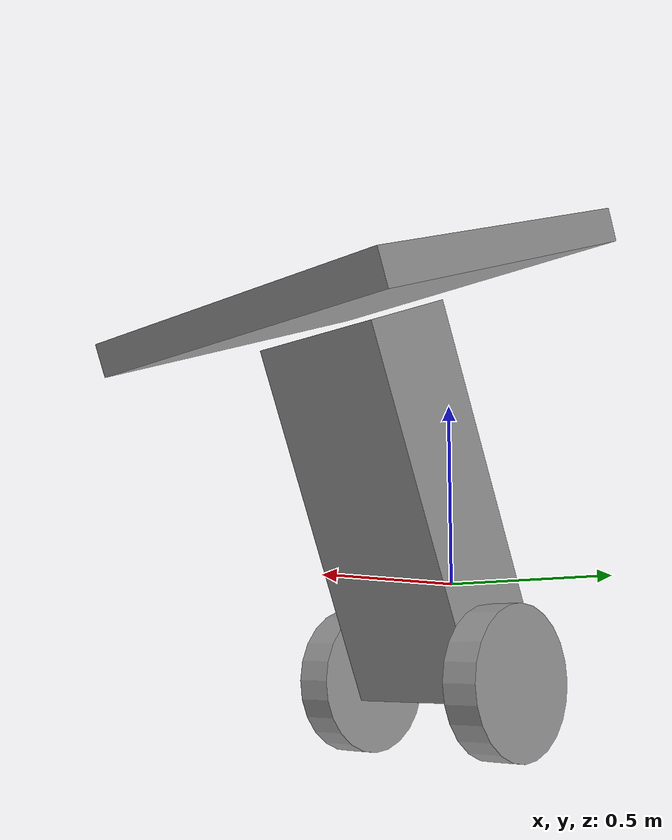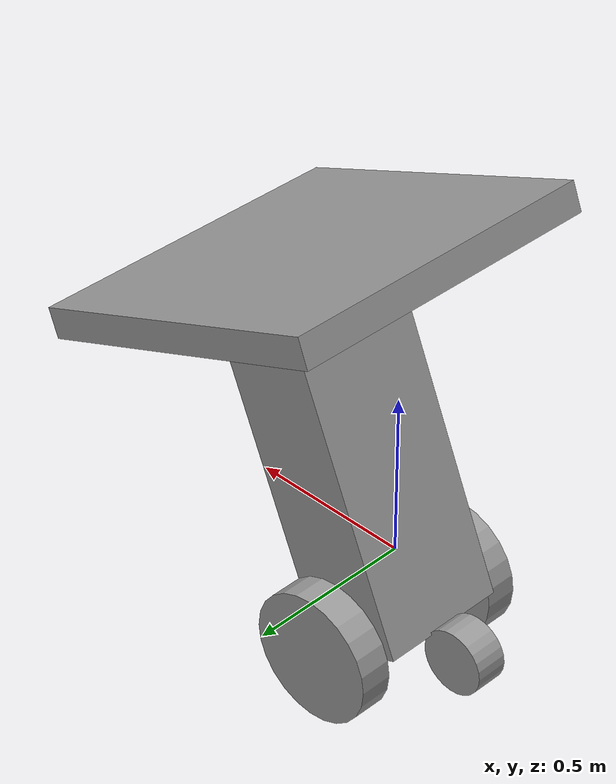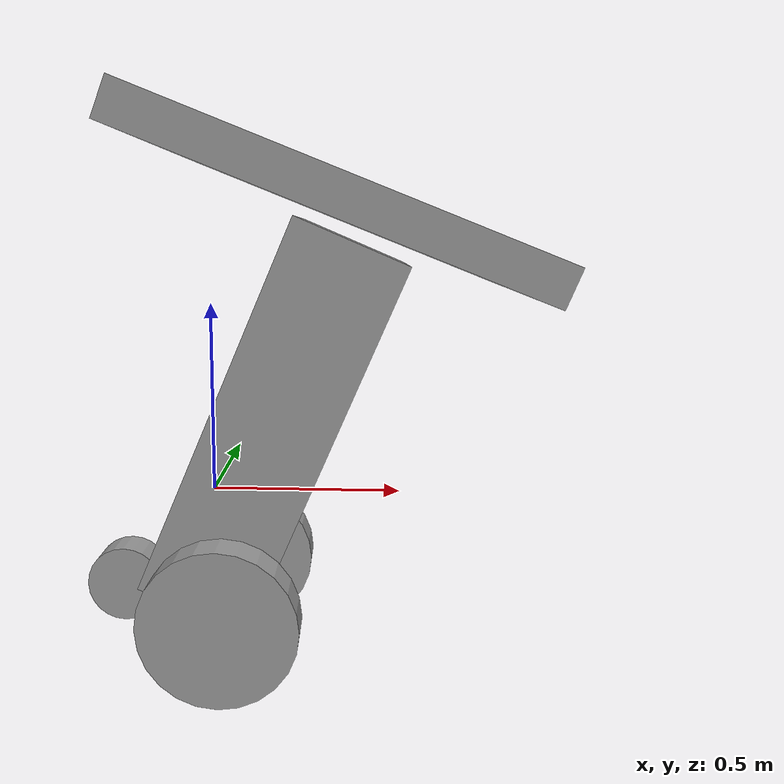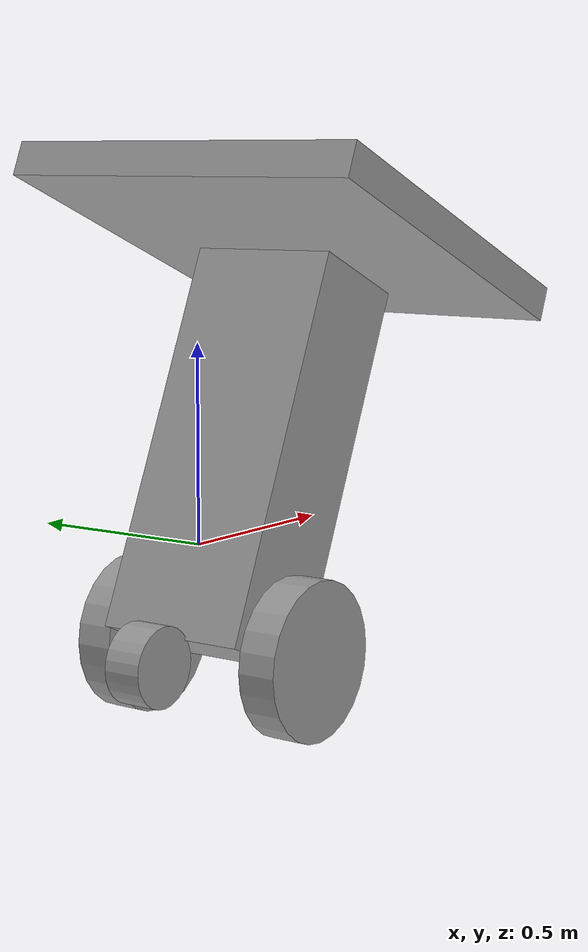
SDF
<?xml version='1.0'?>
<sdf version='1.6'>
  <model name='my-robo--table'>
    <link name='link_0'>
      <inertial>
        <mass>1</mass>
        <inertia>
          <ixx>0.145833</ixx>
          <ixy>0</ixy>
          <ixz>0</ixz>
          <iyy>0.145833</iyy>
          <iyz>0</iyz>
          <izz>0.125</izz>
        </inertia>
        <pose frame=''>0 0 0 0 -0 0</pose>
      </inertial>
      <pose frame=''>-0.23542 -0.030044 -0.250504 1.5707 -0 0</pose>
      <gravity>1</gravity>
      <self_collide>0</self_collide>
      <kinematic>0</kinematic>
      <enable_wind>0</enable_wind>
      <visual name='visual'>
        <pose frame=''>0 0 0 0 -0 0</pose>
        <geometry>
          <cylinder>
            <radius>0.1</radius>
            <length>0.1</length>
          </cylinder>
        </geometry>
        <material>
          <lighting>1</lighting>
          <script>
            <uri>file://media/materials/scripts/gazebo.material</uri>
            <name>Gazebo/Grey</name>
          </script>
          <shader type='vertex'>
            <normal_map>__default__</normal_map>
          </shader>
          <ambient>0.3 0.3 0.3 1</ambient>
          <diffuse>0.7 0.7 0.7 1</diffuse>
          <specular>0.01 0.01 0.01 1</specular>
          <emissive>0 0 0 1</emissive>
        </material>
        <transparency>0</transparency>
        <cast_shadows>1</cast_shadows>
      </visual>
      <collision name='collision'>
        <laser_retro>0</laser_retro>
        <max_contacts>10</max_contacts>
        <pose frame=''>0 0 0 0 -0 0</pose>
        <geometry>
          <cylinder>
            <radius>0.1</radius>
            <length>0.1</length>
          </cylinder>
        </geometry>
        <surface>
          <friction>
            <ode>
              <mu>1</mu>
              <mu2>1</mu2>
              <fdir1>0 0 0</fdir1>
              <slip1>0</slip1>
              <slip2>0</slip2>
            </ode>
            <torsional>
              <coefficient>1</coefficient>
              <patch_radius>0</patch_radius>
              <surface_radius>0</surface_radius>
              <use_patch_radius>1</use_patch_radius>
              <ode>
                <slip>0</slip>
              </ode>
            </torsional>
          </friction>
          <bounce>
            <restitution_coefficient>0</restitution_coefficient>
            <threshold>1e+06</threshold>
          </bounce>
          <contact>
            <collide_without_contact>0</collide_without_contact>
            <collide_without_contact_bitmask>1</collide_without_contact_bitmask>
            <collide_bitmask>1</collide_bitmask>
            <ode>
              <soft_cfm>0</soft_cfm>
              <soft_erp>0.2</soft_erp>
              <kp>1e+13</kp>
              <kd>1</kd>
              <max_vel>0.01</max_vel>
              <min_depth>0</min_depth>
            </ode>
            <bullet>
              <split_impulse>1</split_impulse>
              <split_impulse_penetration_threshold>-0.01</split_impulse_penetration_threshold>
              <soft_cfm>0</soft_cfm>
              <soft_erp>0.2</soft_erp>
              <kp>1e+13</kp>
              <kd>1</kd>
            </bullet>
          </contact>
        </surface>
      </collision>
    </link>
    <link name='link_3'>
      <inertial>
        <mass>1</mass>
        <inertia>
          <ixx>0.145833</ixx>
          <ixy>0</ixy>
          <ixz>0</ixz>
          <iyy>0.145833</iyy>
          <iyz>0</iyz>
          <izz>0.125</izz>
        </inertia>
        <pose frame=''>0 0 0 0 -0 0</pose>
      </inertial>
      <pose frame=''>0.05458 -0.280049 -0.260504 1.5707 -0 0</pose>
      <gravity>1</gravity>
      <self_collide>0</self_collide>
      <kinematic>0</kinematic>
      <enable_wind>0</enable_wind>
      <visual name='visual'>
        <pose frame=''>0 0 0 0 -0 0</pose>
        <geometry>
          <cylinder>
            <radius>0.2</radius>
            <length>0.1</length>
          </cylinder>
        </geometry>
        <material>
          <lighting>1</lighting>
          <script>
            <uri>file://media/materials/scripts/gazebo.material</uri>
            <name>Gazebo/Grey</name>
          </script>
          <shader type='vertex'>
            <normal_map>__default__</normal_map>
          </shader>
          <ambient>0.3 0.3 0.3 1</ambient>
          <diffuse>0.7 0.7 0.7 1</diffuse>
          <specular>0.01 0.01 0.01 1</specular>
          <emissive>0 0 0 1</emissive>
        </material>
        <transparency>0</transparency>
        <cast_shadows>1</cast_shadows>
      </visual>
      <collision name='collision'>
        <laser_retro>0</laser_retro>
        <max_contacts>10</max_contacts>
        <pose frame=''>0 0 0 0 -0 0</pose>
        <geometry>
          <cylinder>
            <radius>0.2</radius>
            <length>0.1</length>
          </cylinder>
        </geometry>
        <surface>
          <friction>
            <ode>
              <mu>1</mu>
              <mu2>1</mu2>
              <fdir1>0 0 0</fdir1>
              <slip1>0</slip1>
              <slip2>0</slip2>
            </ode>
            <torsional>
              <coefficient>1</coefficient>
              <patch_radius>0</patch_radius>
              <surface_radius>0</surface_radius>
              <use_patch_radius>1</use_patch_radius>
              <ode>
                <slip>0</slip>
              </ode>
            </torsional>
          </friction>
          <bounce>
            <restitution_coefficient>0</restitution_coefficient>
            <threshold>1e+06</threshold>
          </bounce>
          <contact>
            <collide_without_contact>0</collide_without_contact>
            <collide_without_contact_bitmask>1</collide_without_contact_bitmask>
            <collide_bitmask>1</collide_bitmask>
            <ode>
              <soft_cfm>0</soft_cfm>
              <soft_erp>0.2</soft_erp>
              <kp>1e+13</kp>
              <kd>1</kd>
              <max_vel>0.01</max_vel>
              <min_depth>0</min_depth>
            </ode>
            <bullet>
              <split_impulse>1</split_impulse>
              <split_impulse_penetration_threshold>-0.01</split_impulse_penetration_threshold>
              <soft_cfm>0</soft_cfm>
              <soft_erp>0.2</soft_erp>
              <kp>1e+13</kp>
              <kd>1</kd>
            </bullet>
          </contact>
        </surface>
      </collision>
    </link>
    <link name='link_3_clone'>
      <inertial>
        <mass>1</mass>
        <inertia>
          <ixx>0.145833</ixx>
          <ixy>0</ixy>
          <ixz>0</ixz>
          <iyy>0.145833</iyy>
          <iyz>0</iyz>
          <izz>0.125</izz>
        </inertia>
        <pose frame=''>0 0 0 0 -0 0</pose>
      </inertial>
      <pose frame=''>0.05458 0.219989 -0.260504 1.5707 -0 0</pose>
      <gravity>1</gravity>
      <self_collide>0</self_collide>
      <kinematic>0</kinematic>
      <enable_wind>0</enable_wind>
      <visual name='visual'>
        <pose frame=''>0 0 0 0 -0 0</pose>
        <geometry>
          <cylinder>
            <radius>0.2</radius>
            <length>0.1</length>
          </cylinder>
        </geometry>
        <material>
          <lighting>1</lighting>
          <script>
            <uri>file://media/materials/scripts/gazebo.material</uri>
            <name>Gazebo/Grey</name>
          </script>
          <shader type='vertex'>
            <normal_map>__default__</normal_map>
          </shader>
          <ambient>0.3 0.3 0.3 1</ambient>
          <diffuse>0.7 0.7 0.7 1</diffuse>
          <specular>0.01 0.01 0.01 1</specular>
          <emissive>0 0 0 1</emissive>
        </material>
        <transparency>0</transparency>
        <cast_shadows>1</cast_shadows>
      </visual>
      <collision name='collision'>
        <laser_retro>0</laser_retro>
        <max_contacts>10</max_contacts>
        <pose frame=''>0 0 0 0 -0 0</pose>
        <geometry>
          <cylinder>
            <radius>0.2</radius>
            <length>0.1</length>
          </cylinder>
        </geometry>
        <surface>
          <friction>
            <ode>
              <mu>1</mu>
              <mu2>1</mu2>
              <fdir1>0 0 0</fdir1>
              <slip1>0</slip1>
              <slip2>0</slip2>
            </ode>
            <torsional>
              <coefficient>1</coefficient>
              <patch_radius>0</patch_radius>
              <surface_radius>0</surface_radius>
              <use_patch_radius>1</use_patch_radius>
              <ode>
                <slip>0</slip>
              </ode>
            </torsional>
          </friction>
          <bounce>
            <restitution_coefficient>0</restitution_coefficient>
            <threshold>1e+06</threshold>
          </bounce>
          <contact>
            <collide_without_contact>0</collide_without_contact>
            <collide_without_contact_bitmask>1</collide_without_contact_bitmask>
            <collide_bitmask>1</collide_bitmask>
            <ode>
              <soft_cfm>0</soft_cfm>
              <soft_erp>0.2</soft_erp>
              <kp>1e+13</kp>
              <kd>1</kd>
              <max_vel>0.01</max_vel>
              <min_depth>0</min_depth>
            </ode>
            <bullet>
              <split_impulse>1</split_impulse>
              <split_impulse_penetration_threshold>-0.01</split_impulse_penetration_threshold>
              <soft_cfm>0</soft_cfm>
              <soft_erp>0.2</soft_erp>
              <kp>1e+13</kp>
              <kd>1</kd>
            </bullet>
          </contact>
        </surface>
      </collision>
    </link>
    <link name='link_4'>
      <inertial>
        <mass>1</mass>
        <inertia>
          <ixx>0.166667</ixx>
          <ixy>0</ixy>
          <ixz>0</ixz>
          <iyy>0.166667</iyy>
          <iyz>0</iyz>
          <izz>0.166667</izz>
        </inertia>
        <pose frame=''>0 0 0 0 -0 0</pose>
      </inertial>
      <pose frame=''>0.174801 -0.03003 0.202531 0 0.403831 0</pose>
      <gravity>1</gravity>
      <self_collide>0</self_collide>
      <kinematic>0</kinematic>
      <enable_wind>0</enable_wind>
      <visual name='visual'>
        <pose frame=''>0 0 0 0 -0 0</pose>
        <geometry>
          <box>
            <size>0.3 0.4 1</size>
          </box>
        </geometry>
        <material>
          <lighting>1</lighting>
          <script>
            <uri>file://media/materials/scripts/gazebo.material</uri>
            <name>Gazebo/Grey</name>
          </script>
          <shader type='vertex'>
            <normal_map>__default__</normal_map>
          </shader>
          <ambient>0.3 0.3 0.3 1</ambient>
          <diffuse>0.7 0.7 0.7 1</diffuse>
          <specular>0.01 0.01 0.01 1</specular>
          <emissive>0 0 0 1</emissive>
        </material>
        <transparency>0</transparency>
        <cast_shadows>1</cast_shadows>
      </visual>
      <collision name='collision'>
        <laser_retro>0</laser_retro>
        <max_contacts>10</max_contacts>
        <pose frame=''>0 0 0 0 -0 0</pose>
        <geometry>
          <box>
            <size>0.3 0.4 1</size>
          </box>
        </geometry>
        <surface>
          <friction>
            <ode>
              <mu>1</mu>
              <mu2>1</mu2>
              <fdir1>0 0 0</fdir1>
              <slip1>0</slip1>
              <slip2>0</slip2>
            </ode>
            <torsional>
              <coefficient>1</coefficient>
              <patch_radius>0</patch_radius>
              <surface_radius>0</surface_radius>
              <use_patch_radius>1</use_patch_radius>
              <ode>
                <slip>0</slip>
              </ode>
            </torsional>
          </friction>
          <bounce>
            <restitution_coefficient>0</restitution_coefficient>
            <threshold>1e+06</threshold>
          </bounce>
          <contact>
            <collide_without_contact>0</collide_without_contact>
            <collide_without_contact_bitmask>1</collide_without_contact_bitmask>
            <collide_bitmask>1</collide_bitmask>
            <ode>
              <soft_cfm>0</soft_cfm>
              <soft_erp>0.2</soft_erp>
              <kp>1e+13</kp>
              <kd>1</kd>
              <max_vel>0.01</max_vel>
              <min_depth>0</min_depth>
            </ode>
            <bullet>
              <split_impulse>1</split_impulse>
              <split_impulse_penetration_threshold>-0.01</split_impulse_penetration_threshold>
              <soft_cfm>0</soft_cfm>
              <soft_erp>0.2</soft_erp>
              <kp>1e+13</kp>
              <kd>1</kd>
            </bullet>
          </contact>
        </surface>
      </collision>
    </link>
    <link name='link_5'>
      <inertial>
        <mass>3.20821</mass>
        <inertia>
          <ixx>0.37742</ixx>
          <ixy>0</ixy>
          <ixz>0</ixz>
          <iyy>0.37742</iyy>
          <iyz>0</iyz>
          <izz>0.534702</izz>
        </inertia>
        <pose frame=''>0 0 0 0 -0 0</pose>
      </inertial>
      <pose frame=''>0.343061 -0.026636 0.759998 0.009094 0.378667 0.004972</pose>
      <gravity>1</gravity>
      <self_collide>0</self_collide>
      <kinematic>0</kinematic>
      <enable_wind>0</enable_wind>
      <visual name='visual'>
        <pose frame=''>0 0 0 0 -0 0</pose>
        <geometry>
          <box>
            <size>1 1 0.09</size>
          </box>
        </geometry>
        <material>
          <lighting>1</lighting>
          <script>
            <uri>file://media/materials/scripts/gazebo.material</uri>
            <name>Gazebo/Grey</name>
          </script>
          <shader type='vertex'>
            <normal_map>__default__</normal_map>
          </shader>
          <ambient>0.3 0.3 0.3 1</ambient>
          <diffuse>0.7 0.7 0.7 1</diffuse>
          <specular>0.01 0.01 0.01 1</specular>
          <emissive>0 0 0 1</emissive>
        </material>
        <transparency>0</transparency>
        <cast_shadows>1</cast_shadows>
      </visual>
      <collision name='collision'>
        <laser_retro>0</laser_retro>
        <max_contacts>10</max_contacts>
        <pose frame=''>0 0 0 0 -0 0</pose>
        <geometry>
          <box>
            <size>1 1 0.09</size>
          </box>
        </geometry>
        <surface>
          <friction>
            <ode>
              <mu>1</mu>
              <mu2>1</mu2>
              <fdir1>0 0 0</fdir1>
              <slip1>0</slip1>
              <slip2>0</slip2>
            </ode>
            <torsional>
              <coefficient>1</coefficient>
              <patch_radius>0</patch_radius>
              <surface_radius>0</surface_radius>
              <use_patch_radius>1</use_patch_radius>
              <ode>
                <slip>0</slip>
              </ode>
            </torsional>
          </friction>
          <bounce>
            <restitution_coefficient>0</restitution_coefficient>
            <threshold>1e+06</threshold>
          </bounce>
          <contact>
            <collide_without_contact>0</collide_without_contact>
            <collide_without_contact_bitmask>1</collide_without_contact_bitmask>
            <collide_bitmask>1</collide_bitmask>
            <ode>
              <soft_cfm>0</soft_cfm>
              <soft_erp>0.2</soft_erp>
              <kp>1e+13</kp>
              <kd>1</kd>
              <max_vel>0.01</max_vel>
              <min_depth>0</min_depth>
            </ode>
            <bullet>
              <split_impulse>1</split_impulse>
              <split_impulse_penetration_threshold>-0.01</split_impulse_penetration_threshold>
              <soft_cfm>0</soft_cfm>
              <soft_erp>0.2</soft_erp>
              <kp>1e+13</kp>
              <kd>1</kd>
            </bullet>
          </contact>
        </surface>
      </collision>
    </link>
    <joint name='link_4_JOINT_0' type='revolute'>
      <parent>link_4</parent>
      <child>link_5</child>
      <pose frame=''>0 0 0 0 -0 0</pose>
      <axis>
        <xyz>0 0 1</xyz>
        <use_parent_model_frame>0</use_parent_model_frame>
        <limit>
          <lower>-1.79769e+308</lower>
          <upper>1.79769e+308</upper>
          <effort>-1</effort>
          <velocity>-1</velocity>
        </limit>
        <dynamics>
          <spring_reference>0</spring_reference>
          <spring_stiffness>0</spring_stiffness>
          <damping>0</damping>
        </dynamics>
      </axis>
      <physics>
        <ode>
          <limit>
            <cfm>0</cfm>
            <erp>0.2</erp>
          </limit>
          <suspension>
            <cfm>0</cfm>
            <erp>0.2</erp>
          </suspension>
        </ode>
      </physics>
    </joint>
    <joint name='link_4_JOINT_4' type='revolute'>
      <parent>link_4</parent>
      <child>link_3_clone</child>
      <pose frame=''>0 0 0 0 -0 0</pose>
      <axis>
        <xyz>1 0 0</xyz>
        <use_parent_model_frame>0</use_parent_model_frame>
        <limit>
          <lower>-1.79769e+308</lower>
          <upper>1.79769e+308</upper>
          <effort>-1</effort>
          <velocity>-1</velocity>
        </limit>
        <dynamics>
          <spring_reference>0</spring_reference>
          <spring_stiffness>0</spring_stiffness>
          <damping>0</damping>
          <friction>0</friction>
        </dynamics>
      </axis>
      <physics>
        <ode>
          <limit>
            <cfm>0</cfm>
            <erp>0.2</erp>
          </limit>
          <suspension>
            <cfm>0</cfm>
            <erp>0.2</erp>
          </suspension>
        </ode>
      </physics>
    </joint>
    <joint name='link_4_JOINT_5' type='revolute'>
      <parent>link_4</parent>
      <child>link_3</child>
      <pose frame=''>0 0 0 0 -0 0</pose>
      <axis>
        <xyz>1 0 0</xyz>
        <use_parent_model_frame>0</use_parent_model_frame>
        <limit>
          <lower>-1.79769e+308</lower>
          <upper>1.79769e+308</upper>
          <effort>-1</effort>
          <velocity>-1</velocity>
        </limit>
        <dynamics>
          <spring_reference>0</spring_reference>
          <spring_stiffness>0</spring_stiffness>
          <damping>0</damping>
          <friction>0</friction>
        </dynamics>
      </axis>
      <physics>
        <ode>
          <limit>
            <cfm>0</cfm>
            <erp>0.2</erp>
          </limit>
          <suspension>
            <cfm>0</cfm>
            <erp>0.2</erp>
          </suspension>
        </ode>
      </physics>
    </joint>
    <joint name='link_4_JOINT_6' type='revolute'>
      <parent>link_4</parent>
      <child>link_0</child>
      <pose frame=''>0 0 0 0 -0 0</pose>
      <axis>
        <xyz>1 0 0</xyz>
        <use_parent_model_frame>0</use_parent_model_frame>
        <limit>
          <lower>-1.79769e+308</lower>
          <upper>1.79769e+308</upper>
          <effort>-1</effort>
          <velocity>-1</velocity>
        </limit>
        <dynamics>
          <spring_reference>0</spring_reference>
          <spring_stiffness>0</spring_stiffness>
          <damping>0</damping>
          <friction>0</friction>
        </dynamics>
      </axis>
      <physics>
        <ode>
          <limit>
            <cfm>0</cfm>
            <erp>0.2</erp>
          </limit>
          <suspension>
            <cfm>0</cfm>
            <erp>0.2</erp>
          </suspension>
        </ode>
      </physics>
    </joint>
    <static>0</static>
    <allow_auto_disable>1</allow_auto_disable>
  </model>
</sdf>
